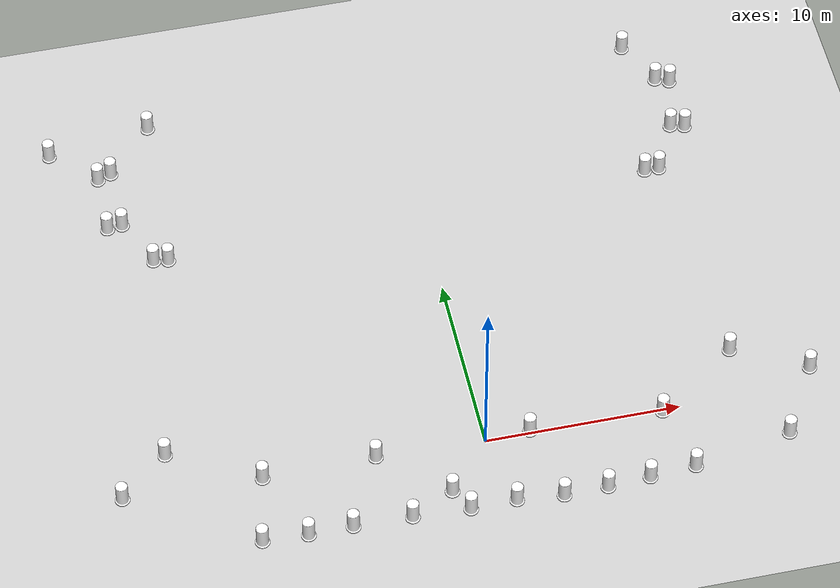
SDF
<sdf version="1.7">
 <world name="default">
  <light name="sun" type="directional">
   <pose>0 0 10 0 -0 0</pose>
   <diffuse>0.8 0.8 0.8 1</diffuse>
   <specular>0.2 0.2 0.2 1</specular>
   <attenuation>
    <range>1000</range>
    <constant>0.9</constant>
    <linear>0.01</linear>
    <quadratic>0.001</quadratic>
   </attenuation>
   <direction>-0.5 0.1 -0.9</direction>
   <spot><inner_angle>0</inner_angle><outer_angle>0</outer_angle><falloff>0</falloff></spot>
  </light>
  <model name="ground_plane">
   <static>1</static>
   <link name="link">
    <collision name="collision">
     <geometry><plane><normal>0 0 1</normal><size>100 100</size></plane></geometry>
     <surface><friction><ode><mu>100</mu><mu2>50</mu2></ode></friction></surface>
    </collision>
    <visual name="visual">
     <cast_shadows>0</cast_shadows>
     <geometry><plane><normal>0 0 1</normal><size>100 100</size></plane></geometry>
     <material>
      <script><uri>file://media/materials/scripts/gazebo.material</uri><name>Gazebo/Grey</name></script>
     </material>
    </visual>
   </link>
  </model>
  <gravity>0 0 -9.8</gravity>
  <magnetic_field>6e-06 2.3e-05 -4.2e-05</magnetic_field>
  <atmosphere type="adiabatic"/>
  <physics type="ode">
   <max_step_size>0.001</max_step_size>
   <real_time_factor>1</real_time_factor>
   <real_time_update_rate>1000</real_time_update_rate>
  </physics>
  <scene><ambient>0.4 0.4 0.4 1</ambient><background>0.7 0.7 0.7 1</background><shadows>1</shadows></scene>
  <spherical_coordinates>
   <surface_model>EARTH_WGS84</surface_model>
   <latitude_deg>0</latitude_deg>
   <longitude_deg>0</longitude_deg>
   <elevation>0</elevation>
   <heading_deg>0</heading_deg>
  </spherical_coordinates>
  <model name="Barrel_Cone">
   <static>1</static>
   <link name="link">
    <visual name="visual">
     <geometry><mesh><uri>model://barrel_cone/meshes/Barrel_Cone.STL</uri><scale>1 1 1</scale></mesh></geometry>
     <material>
      <ambient>1 1 1 1</ambient>
      <diffuse>1 1 1 1</diffuse>
      <specular>0.1 0.1 0.1 1</specular>
      <emissive>0 0 0 1</emissive>
     </material>
    </visual>
    <collision name="collision">
     <geometry><mesh><uri>model://barrel_cone/meshes/Barrel_Cone.STL</uri><scale>1 1 1</scale></mesh></geometry>
     <surface>
      <friction><ode><mu>0.5</mu><mu2>0.5</mu2></ode></friction>
      <bounce><restitution_coefficient>0.1</restitution_coefficient></bounce>
      <contact><ode><soft_cfm>0</soft_cfm><soft_erp>0.2</soft_erp></ode></contact>
     </surface>
    </collision>
    <inertial>
     <mass>1</mass>
     <inertia><ixx>0.1</ixx><iyy>0.1</iyy><izz>0.1</izz><ixy>0</ixy><ixz>0</ixz><iyz>0</iyz></inertia>
    </inertial>
   </link>
   <pose>13.8376 21.0682 0 0 -0 0</pose>
  </model>
  <model name="Barrel_Cone_0">
   <static>1</static>
   <link name="link">
    <visual name="visual">
     <geometry><mesh><uri>model://barrel_cone/meshes/Barrel_Cone.STL</uri><scale>1 1 1</scale></mesh></geometry>
     <material>
      <ambient>1 1 1 1</ambient>
      <diffuse>1 1 1 1</diffuse>
      <specular>0.1 0.1 0.1 1</specular>
      <emissive>0 0 0 1</emissive>
     </material>
    </visual>
    <collision name="collision">
     <geometry><mesh><uri>model://barrel_cone/meshes/Barrel_Cone.STL</uri><scale>1 1 1</scale></mesh></geometry>
     <surface>
      <friction><ode><mu>0.5</mu><mu2>0.5</mu2></ode></friction>
      <bounce><restitution_coefficient>0.1</restitution_coefficient></bounce>
      <contact><ode><soft_cfm>0</soft_cfm><soft_erp>0.2</soft_erp></ode></contact>
     </surface>
    </collision>
    <inertial>
     <mass>1</mass>
     <inertia><ixx>0.1</ixx><iyy>0.1</iyy><izz>0.1</izz><ixy>0</ixy><ixz>0</ixz><iyz>0</iyz></inertia>
    </inertial>
   </link>
   <pose>14.5472 17.5415 0 0 -0 0</pose>
  </model>
  <model name="Barrel_Cone_1">
   <static>1</static>
   <link name="link">
    <visual name="visual">
     <geometry><mesh><uri>model://barrel_cone/meshes/Barrel_Cone.STL</uri><scale>1 1 1</scale></mesh></geometry>
     <material>
      <ambient>1 1 1 1</ambient>
      <diffuse>1 1 1 1</diffuse>
      <specular>0.1 0.1 0.1 1</specular>
      <emissive>0 0 0 1</emissive>
     </material>
    </visual>
    <collision name="collision">
     <geometry><mesh><uri>model://barrel_cone/meshes/Barrel_Cone.STL</uri><scale>1 1 1</scale></mesh></geometry>
     <surface>
      <friction><ode><mu>0.5</mu><mu2>0.5</mu2></ode></friction>
      <bounce><restitution_coefficient>0.1</restitution_coefficient></bounce>
      <contact><ode><soft_cfm>0</soft_cfm><soft_erp>0.2</soft_erp></ode></contact>
     </surface>
    </collision>
    <inertial>
     <mass>1</mass>
     <inertia><ixx>0.1</ixx><iyy>0.1</iyy><izz>0.1</izz><ixy>0</ixy><ixz>0</ixz><iyz>0</iyz></inertia>
    </inertial>
   </link>
   <pose>13.8131 17.7297 0 0 -0 0</pose>
  </model>
  <model name="Barrel_Cone_2">
   <static>1</static>
   <link name="link">
    <visual name="visual">
     <geometry><mesh><uri>model://barrel_cone/meshes/Barrel_Cone.STL</uri><scale>1 1 1</scale></mesh></geometry>
     <material>
      <ambient>1 1 1 1</ambient>
      <diffuse>1 1 1 1</diffuse>
      <specular>0.1 0.1 0.1 1</specular>
      <emissive>0 0 0 1</emissive>
     </material>
    </visual>
    <collision name="collision">
     <geometry><mesh><uri>model://barrel_cone/meshes/Barrel_Cone.STL</uri><scale>1 1 1</scale></mesh></geometry>
     <surface>
      <friction><ode><mu>0.5</mu><mu2>0.5</mu2></ode></friction>
      <bounce><restitution_coefficient>0.1</restitution_coefficient></bounce>
      <contact><ode><soft_cfm>0</soft_cfm><soft_erp>0.2</soft_erp></ode></contact>
     </surface>
    </collision>
    <inertial>
     <mass>1</mass>
     <inertia><ixx>0.1</ixx><iyy>0.1</iyy><izz>0.1</izz><ixy>0</ixy><ixz>0</ixz><iyz>0</iyz></inertia>
    </inertial>
   </link>
   <pose>14.5565 20.7766 0 0 -0 0</pose>
  </model>
  <model name="Barrel_Cone_3">
   <static>1</static>
   <link name="link">
    <visual name="visual">
     <geometry><mesh><uri>model://barrel_cone/meshes/Barrel_Cone.STL</uri><scale>1 1 1</scale></mesh></geometry>
     <material>
      <ambient>1 1 1 1</ambient>
      <diffuse>1 1 1 1</diffuse>
      <specular>0.1 0.1 0.1 1</specular>
      <emissive>0 0 0 1</emissive>
     </material>
    </visual>
    <collision name="collision">
     <geometry><mesh><uri>model://barrel_cone/meshes/Barrel_Cone.STL</uri><scale>1 1 1</scale></mesh></geometry>
     <surface>
      <friction><ode><mu>0.5</mu><mu2>0.5</mu2></ode></friction>
      <bounce><restitution_coefficient>0.1</restitution_coefficient></bounce>
      <contact><ode><soft_cfm>0</soft_cfm><soft_erp>0.2</soft_erp></ode></contact>
     </surface>
    </collision>
    <inertial>
     <mass>1</mass>
     <inertia><ixx>0.1</ixx><iyy>0.1</iyy><izz>0.1</izz><ixy>0</ixy><ixz>0</ixz><iyz>0</iyz></inertia>
    </inertial>
   </link>
   <pose>11.718 15.0001 0 0 -0 0</pose>
  </model>
  <model name="Barrel_Cone_4">
   <static>1</static>
   <link name="link">
    <visual name="visual">
     <geometry><mesh><uri>model://barrel_cone/meshes/Barrel_Cone.STL</uri><scale>1 1 1</scale></mesh></geometry>
     <material>
      <ambient>1 1 1 1</ambient>
      <diffuse>1 1 1 1</diffuse>
      <specular>0.1 0.1 0.1 1</specular>
      <emissive>0 0 0 1</emissive>
     </material>
    </visual>
    <collision name="collision">
     <geometry><mesh><uri>model://barrel_cone/meshes/Barrel_Cone.STL</uri><scale>1 1 1</scale></mesh></geometry>
     <surface>
      <friction><ode><mu>0.5</mu><mu2>0.5</mu2></ode></friction>
      <bounce><restitution_coefficient>0.1</restitution_coefficient></bounce>
      <contact><ode><soft_cfm>0</soft_cfm><soft_erp>0.2</soft_erp></ode></contact>
     </surface>
    </collision>
    <inertial>
     <mass>1</mass>
     <inertia><ixx>0.1</ixx><iyy>0.1</iyy><izz>0.1</izz><ixy>0</ixy><ixz>0</ixz><iyz>0</iyz></inertia>
    </inertial>
   </link>
   <pose>12.4949 15.0017 0 0 -0 0</pose>
  </model>
  <model name="Barrel_Cone_5">
   <static>1</static>
   <link name="link">
    <visual name="visual">
     <geometry><mesh><uri>model://barrel_cone/meshes/Barrel_Cone.STL</uri><scale>1 1 1</scale></mesh></geometry>
     <material>
      <ambient>1 1 1 1</ambient>
      <diffuse>1 1 1 1</diffuse>
      <specular>0.1 0.1 0.1 1</specular>
      <emissive>0 0 0 1</emissive>
     </material>
    </visual>
    <collision name="collision">
     <geometry><mesh><uri>model://barrel_cone/meshes/Barrel_Cone.STL</uri><scale>1 1 1</scale></mesh></geometry>
     <surface>
      <friction><ode><mu>0.5</mu><mu2>0.5</mu2></ode></friction>
      <bounce><restitution_coefficient>0.1</restitution_coefficient></bounce>
      <contact><ode><soft_cfm>0</soft_cfm><soft_erp>0.2</soft_erp></ode></contact>
     </surface>
    </collision>
    <inertial>
     <mass>1</mass>
     <inertia><ixx>0.1</ixx><iyy>0.1</iyy><izz>0.1</izz><ixy>0</ixy><ixz>0</ixz><iyz>0</iyz></inertia>
    </inertial>
   </link>
   <pose>12.9676 2.5241 0 0 -0 0</pose>
  </model>
  <model name="Barrel_Cone_7">
   <static>1</static>
   <link name="link">
    <visual name="visual">
     <geometry><mesh><uri>model://barrel_cone/meshes/Barrel_Cone.STL</uri><scale>1 1 1</scale></mesh></geometry>
     <material>
      <ambient>1 1 1 1</ambient>
      <diffuse>1 1 1 1</diffuse>
      <specular>0.1 0.1 0.1 1</specular>
      <emissive>0 0 0 1</emissive>
     </material>
    </visual>
    <collision name="collision">
     <geometry><mesh><uri>model://barrel_cone/meshes/Barrel_Cone.STL</uri><scale>1 1 1</scale></mesh></geometry>
     <surface>
      <friction><ode><mu>0.5</mu><mu2>0.5</mu2></ode></friction>
      <bounce><restitution_coefficient>0.1</restitution_coefficient></bounce>
      <contact><ode><soft_cfm>0</soft_cfm><soft_erp>0.2</soft_erp></ode></contact>
     </surface>
    </collision>
    <inertial>
     <mass>1</mass>
     <inertia><ixx>0.1</ixx><iyy>0.1</iyy><izz>0.1</izz><ixy>0</ixy><ixz>0</ixz><iyz>0</iyz></inertia>
    </inertial>
   </link>
   <pose>16.6469 0.586299 0 0 -0 0</pose>
  </model>
  <model name="Barrel_Cone_8">
   <static>1</static>
   <link name="link">
    <visual name="visual">
     <geometry><mesh><uri>model://barrel_cone/meshes/Barrel_Cone.STL</uri><scale>1 1 1</scale></mesh></geometry>
     <material>
      <ambient>1 1 1 1</ambient>
      <diffuse>1 1 1 1</diffuse>
      <specular>0.1 0.1 0.1 1</specular>
      <emissive>0 0 0 1</emissive>
     </material>
    </visual>
    <collision name="collision">
     <geometry><mesh><uri>model://barrel_cone/meshes/Barrel_Cone.STL</uri><scale>1 1 1</scale></mesh></geometry>
     <surface>
      <friction><ode><mu>0.5</mu><mu2>0.5</mu2></ode></friction>
      <bounce><restitution_coefficient>0.1</restitution_coefficient></bounce>
      <contact><ode><soft_cfm>0</soft_cfm><soft_erp>0.2</soft_erp></ode></contact>
     </surface>
    </collision>
    <inertial>
     <mass>1</mass>
     <inertia><ixx>0.1</ixx><iyy>0.1</iyy><izz>0.1</izz><ixy>0</ixy><ixz>0</ixz><iyz>0</iyz></inertia>
    </inertial>
   </link>
   <pose>14.5628 -3.15812 0 0 -0 0</pose>
  </model>
  <model name="Barrel_Cone_9">
   <static>1</static>
   <link name="link">
    <visual name="visual">
     <geometry><mesh><uri>model://barrel_cone/meshes/Barrel_Cone.STL</uri><scale>1 1 1</scale></mesh></geometry>
     <material>
      <ambient>1 1 1 1</ambient>
      <diffuse>1 1 1 1</diffuse>
      <specular>0.1 0.1 0.1 1</specular>
      <emissive>0 0 0 1</emissive>
     </material>
    </visual>
    <collision name="collision">
     <geometry><mesh><uri>model://barrel_cone/meshes/Barrel_Cone.STL</uri><scale>1 1 1</scale></mesh></geometry>
     <surface>
      <friction><ode><mu>0.5</mu><mu2>0.5</mu2></ode></friction>
      <bounce><restitution_coefficient>0.1</restitution_coefficient></bounce>
      <contact><ode><soft_cfm>0</soft_cfm><soft_erp>0.2</soft_erp></ode></contact>
     </surface>
    </collision>
    <inertial>
     <mass>1</mass>
     <inertia><ixx>0.1</ixx><iyy>0.1</iyy><izz>0.1</izz><ixy>0</ixy><ixz>0</ixz><iyz>0</iyz></inertia>
    </inertial>
   </link>
   <pose>-5.94864 -0.220497 0 0 -0 0</pose>
  </model>
  <model name="Barrel_Cone_10">
   <static>1</static>
   <link name="link">
    <visual name="visual">
     <geometry><mesh><uri>model://barrel_cone/meshes/Barrel_Cone.STL</uri><scale>1 1 1</scale></mesh></geometry>
     <material>
      <ambient>1 1 1 1</ambient>
      <diffuse>1 1 1 1</diffuse>
      <specular>0.1 0.1 0.1 1</specular>
      <emissive>0 0 0 1</emissive>
     </material>
    </visual>
    <collision name="collision">
     <geometry><mesh><uri>model://barrel_cone/meshes/Barrel_Cone.STL</uri><scale>1 1 1</scale></mesh></geometry>
     <surface>
      <friction><ode><mu>0.5</mu><mu2>0.5</mu2></ode></friction>
      <bounce><restitution_coefficient>0.1</restitution_coefficient></bounce>
      <contact><ode><soft_cfm>0</soft_cfm><soft_erp>0.2</soft_erp></ode></contact>
     </surface>
    </collision>
    <inertial>
     <mass>1</mass>
     <inertia><ixx>0.1</ixx><iyy>0.1</iyy><izz>0.1</izz><ixy>0</ixy><ixz>0</ixz><iyz>0</iyz></inertia>
    </inertial>
   </link>
   <pose>-11.6993 -0.29833 0 0 -0 0</pose>
  </model>
  <model name="Barrel_Cone_11">
   <static>1</static>
   <link name="link">
    <visual name="visual">
     <geometry><mesh><uri>model://barrel_cone/meshes/Barrel_Cone.STL</uri><scale>1 1 1</scale></mesh></geometry>
     <material>
      <ambient>1 1 1 1</ambient>
      <diffuse>1 1 1 1</diffuse>
      <specular>0.1 0.1 0.1 1</specular>
      <emissive>0 0 0 1</emissive>
     </material>
    </visual>
    <collision name="collision">
     <geometry><mesh><uri>model://barrel_cone/meshes/Barrel_Cone.STL</uri><scale>1 1 1</scale></mesh></geometry>
     <surface>
      <friction><ode><mu>0.5</mu><mu2>0.5</mu2></ode></friction>
      <bounce><restitution_coefficient>0.1</restitution_coefficient></bounce>
      <contact><ode><soft_cfm>0</soft_cfm><soft_erp>0.2</soft_erp></ode></contact>
     </surface>
    </collision>
    <inertial>
     <mass>1</mass>
     <inertia><ixx>0.1</ixx><iyy>0.1</iyy><izz>0.1</izz><ixy>0</ixy><ixz>0</ixz><iyz>0</iyz></inertia>
    </inertial>
   </link>
   <pose>1.91109 -0.260444 0 0 -0 0</pose>
  </model>
  <model name="Barrel_Cone_12">
   <static>1</static>
   <link name="link">
    <visual name="visual">
     <geometry><mesh><uri>model://barrel_cone/meshes/Barrel_Cone.STL</uri><scale>1 1 1</scale></mesh></geometry>
     <material>
      <ambient>1 1 1 1</ambient>
      <diffuse>1 1 1 1</diffuse>
      <specular>0.1 0.1 0.1 1</specular>
      <emissive>0 0 0 1</emissive>
     </material>
    </visual>
    <collision name="collision">
     <geometry><mesh><uri>model://barrel_cone/meshes/Barrel_Cone.STL</uri><scale>1 1 1</scale></mesh></geometry>
     <surface>
      <friction><ode><mu>0.5</mu><mu2>0.5</mu2></ode></friction>
      <bounce><restitution_coefficient>0.1</restitution_coefficient></bounce>
      <contact><ode><soft_cfm>0</soft_cfm><soft_erp>0.2</soft_erp></ode></contact>
     </surface>
    </collision>
    <inertial>
     <mass>1</mass>
     <inertia><ixx>0.1</ixx><iyy>0.1</iyy><izz>0.1</izz><ixy>0</ixy><ixz>0</ixz><iyz>0</iyz></inertia>
    </inertial>
   </link>
   <pose>8.69496 -0.522741 0 0 -0 0</pose>
  </model>
  <model name="Barrel_Cone_13">
   <static>1</static>
   <link name="link">
    <visual name="visual">
     <geometry><mesh><uri>model://barrel_cone/meshes/Barrel_Cone.STL</uri><scale>1 1 1</scale></mesh></geometry>
     <material>
      <ambient>1 1 1 1</ambient>
      <diffuse>1 1 1 1</diffuse>
      <specular>0.1 0.1 0.1 1</specular>
      <emissive>0 0 0 1</emissive>
     </material>
    </visual>
    <collision name="collision">
     <geometry><mesh><uri>model://barrel_cone/meshes/Barrel_Cone.STL</uri><scale>1 1 1</scale></mesh></geometry>
     <surface>
      <friction><ode><mu>0.5</mu><mu2>0.5</mu2></ode></friction>
      <bounce><restitution_coefficient>0.1</restitution_coefficient></bounce>
      <contact><ode><soft_cfm>0</soft_cfm><soft_erp>0.2</soft_erp></ode></contact>
     </surface>
    </collision>
    <inertial>
     <mass>1</mass>
     <inertia><ixx>0.1</ixx><iyy>0.1</iyy><izz>0.1</izz><ixy>0</ixy><ixz>0</ixz><iyz>0</iyz></inertia>
    </inertial>
   </link>
   <pose>-2.68294 -3.07371 0 0 -0 0</pose>
  </model>
  <model name="Barrel_Cone_14">
   <static>1</static>
   <link name="link">
    <visual name="visual">
     <geometry><mesh><uri>model://barrel_cone/meshes/Barrel_Cone.STL</uri><scale>1 1 1</scale></mesh></geometry>
     <material>
      <ambient>1 1 1 1</ambient>
      <diffuse>1 1 1 1</diffuse>
      <specular>0.1 0.1 0.1 1</specular>
      <emissive>0 0 0 1</emissive>
     </material>
    </visual>
    <collision name="collision">
     <geometry><mesh><uri>model://barrel_cone/meshes/Barrel_Cone.STL</uri><scale>1 1 1</scale></mesh></geometry>
     <surface>
      <friction><ode><mu>0.5</mu><mu2>0.5</mu2></ode></friction>
      <bounce><restitution_coefficient>0.1</restitution_coefficient></bounce>
      <contact><ode><soft_cfm>0</soft_cfm><soft_erp>0.2</soft_erp></ode></contact>
     </surface>
    </collision>
    <inertial>
     <mass>1</mass>
     <inertia><ixx>0.1</ixx><iyy>0.1</iyy><izz>0.1</izz><ixy>0</ixy><ixz>0</ixz><iyz>0</iyz></inertia>
    </inertial>
   </link>
   <pose>-12.4256 -4.03478 0 0 -0 0</pose>
  </model>
  <model name="Barrel_Cone_15">
   <static>1</static>
   <link name="link">
    <visual name="visual">
     <geometry><mesh><uri>model://barrel_cone/meshes/Barrel_Cone.STL</uri><scale>1 1 1</scale></mesh></geometry>
     <material>
      <ambient>1 1 1 1</ambient>
      <diffuse>1 1 1 1</diffuse>
      <specular>0.1 0.1 0.1 1</specular>
      <emissive>0 0 0 1</emissive>
     </material>
    </visual>
    <collision name="collision">
     <geometry><mesh><uri>model://barrel_cone/meshes/Barrel_Cone.STL</uri><scale>1 1 1</scale></mesh></geometry>
     <surface>
      <friction><ode><mu>0.5</mu><mu2>0.5</mu2></ode></friction>
      <bounce><restitution_coefficient>0.1</restitution_coefficient></bounce>
      <contact><ode><soft_cfm>0</soft_cfm><soft_erp>0.2</soft_erp></ode></contact>
     </surface>
    </collision>
    <inertial>
     <mass>1</mass>
     <inertia><ixx>0.1</ixx><iyy>0.1</iyy><izz>0.1</izz><ixy>0</ixy><ixz>0</ixz><iyz>0</iyz></inertia>
    </inertial>
   </link>
   <pose>-10.1371 -4.13755 0 0 -0 0</pose>
  </model>
  <model name="Barrel_Cone_16">
   <static>1</static>
   <link name="link">
    <visual name="visual">
     <geometry><mesh><uri>model://barrel_cone/meshes/Barrel_Cone.STL</uri><scale>1 1 1</scale></mesh></geometry>
     <material>
      <ambient>1 1 1 1</ambient>
      <diffuse>1 1 1 1</diffuse>
      <specular>0.1 0.1 0.1 1</specular>
      <emissive>0 0 0 1</emissive>
     </material>
    </visual>
    <collision name="collision">
     <geometry><mesh><uri>model://barrel_cone/meshes/Barrel_Cone.STL</uri><scale>1 1 1</scale></mesh></geometry>
     <surface>
      <friction><ode><mu>0.5</mu><mu2>0.5</mu2></ode></friction>
      <bounce><restitution_coefficient>0.1</restitution_coefficient></bounce>
      <contact><ode><soft_cfm>0</soft_cfm><soft_erp>0.2</soft_erp></ode></contact>
     </surface>
    </collision>
    <inertial>
     <mass>1</mass>
     <inertia><ixx>0.1</ixx><iyy>0.1</iyy><izz>0.1</izz><ixy>0</ixy><ixz>0</ixz><iyz>0</iyz></inertia>
    </inertial>
   </link>
   <pose>-7.89612 -4.11008 0 0 -0 0</pose>
  </model>
  <model name="Barrel_Cone_17">
   <static>1</static>
   <link name="link">
    <visual name="visual">
     <geometry><mesh><uri>model://barrel_cone/meshes/Barrel_Cone.STL</uri><scale>1 1 1</scale></mesh></geometry>
     <material>
      <ambient>1 1 1 1</ambient>
      <diffuse>1 1 1 1</diffuse>
      <specular>0.1 0.1 0.1 1</specular>
      <emissive>0 0 0 1</emissive>
     </material>
    </visual>
    <collision name="collision">
     <geometry><mesh><uri>model://barrel_cone/meshes/Barrel_Cone.STL</uri><scale>1 1 1</scale></mesh></geometry>
     <surface>
      <friction><ode><mu>0.5</mu><mu2>0.5</mu2></ode></friction>
      <bounce><restitution_coefficient>0.1</restitution_coefficient></bounce>
      <contact><ode><soft_cfm>0</soft_cfm><soft_erp>0.2</soft_erp></ode></contact>
     </surface>
    </collision>
    <inertial>
     <mass>1</mass>
     <inertia><ixx>0.1</ixx><iyy>0.1</iyy><izz>0.1</izz><ixy>0</ixy><ixz>0</ixz><iyz>0</iyz></inertia>
    </inertial>
   </link>
   <pose>-4.9258 -4.17526 0 0 -0 0</pose>
  </model>
  <model name="Barrel_Cone_18">
   <static>1</static>
   <link name="link">
    <visual name="visual">
     <geometry><mesh><uri>model://barrel_cone/meshes/Barrel_Cone.STL</uri><scale>1 1 1</scale></mesh></geometry>
     <material>
      <ambient>1 1 1 1</ambient>
      <diffuse>1 1 1 1</diffuse>
      <specular>0.1 0.1 0.1 1</specular>
      <emissive>0 0 0 1</emissive>
     </material>
    </visual>
    <collision name="collision">
     <geometry><mesh><uri>model://barrel_cone/meshes/Barrel_Cone.STL</uri><scale>1 1 1</scale></mesh></geometry>
     <surface>
      <friction><ode><mu>0.5</mu><mu2>0.5</mu2></ode></friction>
      <bounce><restitution_coefficient>0.1</restitution_coefficient></bounce>
      <contact><ode><soft_cfm>0</soft_cfm><soft_erp>0.2</soft_erp></ode></contact>
     </surface>
    </collision>
    <inertial>
     <mass>1</mass>
     <inertia><ixx>0.1</ixx><iyy>0.1</iyy><izz>0.1</izz><ixy>0</ixy><ixz>0</ixz><iyz>0</iyz></inertia>
    </inertial>
   </link>
   <pose>-2.02108 -4.31723 0 0 -0 0</pose>
  </model>
  <model name="Barrel_Cone_19">
   <static>1</static>
   <link name="link">
    <visual name="visual">
     <geometry><mesh><uri>model://barrel_cone/meshes/Barrel_Cone.STL</uri><scale>1 1 1</scale></mesh></geometry>
     <material>
      <ambient>1 1 1 1</ambient>
      <diffuse>1 1 1 1</diffuse>
      <specular>0.1 0.1 0.1 1</specular>
      <emissive>0 0 0 1</emissive>
     </material>
    </visual>
    <collision name="collision">
     <geometry><mesh><uri>model://barrel_cone/meshes/Barrel_Cone.STL</uri><scale>1 1 1</scale></mesh></geometry>
     <surface>
      <friction><ode><mu>0.5</mu><mu2>0.5</mu2></ode></friction>
      <bounce><restitution_coefficient>0.1</restitution_coefficient></bounce>
      <contact><ode><soft_cfm>0</soft_cfm><soft_erp>0.2</soft_erp></ode></contact>
     </surface>
    </collision>
    <inertial>
     <mass>1</mass>
     <inertia><ixx>0.1</ixx><iyy>0.1</iyy><izz>0.1</izz><ixy>0</ixy><ixz>0</ixz><iyz>0</iyz></inertia>
    </inertial>
   </link>
   <pose>0.314921 -4.27109 0 0 -0 0</pose>
  </model>
  <model name="Barrel_Cone_20">
   <static>1</static>
   <link name="link">
    <visual name="visual">
     <geometry><mesh><uri>model://barrel_cone/meshes/Barrel_Cone.STL</uri><scale>1 1 1</scale></mesh></geometry>
     <material>
      <ambient>1 1 1 1</ambient>
      <diffuse>1 1 1 1</diffuse>
      <specular>0.1 0.1 0.1 1</specular>
      <emissive>0 0 0 1</emissive>
     </material>
    </visual>
    <collision name="collision">
     <geometry><mesh><uri>model://barrel_cone/meshes/Barrel_Cone.STL</uri><scale>1 1 1</scale></mesh></geometry>
     <surface>
      <friction><ode><mu>0.5</mu><mu2>0.5</mu2></ode></friction>
      <bounce><restitution_coefficient>0.1</restitution_coefficient></bounce>
      <contact><ode><soft_cfm>0</soft_cfm><soft_erp>0.2</soft_erp></ode></contact>
     </surface>
    </collision>
    <inertial>
     <mass>1</mass>
     <inertia><ixx>0.1</ixx><iyy>0.1</iyy><izz>0.1</izz><ixy>0</ixy><ixz>0</ixz><iyz>0</iyz></inertia>
    </inertial>
   </link>
   <pose>2.66427 -4.49358 0 0 -0 0</pose>
  </model>
  <model name="Barrel_Cone_21">
   <static>1</static>
   <link name="link">
    <visual name="visual">
     <geometry><mesh><uri>model://barrel_cone/meshes/Barrel_Cone.STL</uri><scale>1 1 1</scale></mesh></geometry>
     <material>
      <ambient>1 1 1 1</ambient>
      <diffuse>1 1 1 1</diffuse>
      <specular>0.1 0.1 0.1 1</specular>
      <emissive>0 0 0 1</emissive>
     </material>
    </visual>
    <collision name="collision">
     <geometry><mesh><uri>model://barrel_cone/meshes/Barrel_Cone.STL</uri><scale>1 1 1</scale></mesh></geometry>
     <surface>
      <friction><ode><mu>0.5</mu><mu2>0.5</mu2></ode></friction>
      <bounce><restitution_coefficient>0.1</restitution_coefficient></bounce>
      <contact><ode><soft_cfm>0</soft_cfm><soft_erp>0.2</soft_erp></ode></contact>
     </surface>
    </collision>
    <inertial>
     <mass>1</mass>
     <inertia><ixx>0.1</ixx><iyy>0.1</iyy><izz>0.1</izz><ixy>0</ixy><ixz>0</ixz><iyz>0</iyz></inertia>
    </inertial>
   </link>
   <pose>4.90029 -4.45814 0 0 -0 0</pose>
  </model>
  <model name="Barrel_Cone_22">
   <static>1</static>
   <link name="link">
    <visual name="visual">
     <geometry><mesh><uri>model://barrel_cone/meshes/Barrel_Cone.STL</uri><scale>1 1 1</scale></mesh></geometry>
     <material>
      <ambient>1 1 1 1</ambient>
      <diffuse>1 1 1 1</diffuse>
      <specular>0.1 0.1 0.1 1</specular>
      <emissive>0 0 0 1</emissive>
     </material>
    </visual>
    <collision name="collision">
     <geometry><mesh><uri>model://barrel_cone/meshes/Barrel_Cone.STL</uri><scale>1 1 1</scale></mesh></geometry>
     <surface>
      <friction><ode><mu>0.5</mu><mu2>0.5</mu2></ode></friction>
      <bounce><restitution_coefficient>0.1</restitution_coefficient></bounce>
      <contact><ode><soft_cfm>0</soft_cfm><soft_erp>0.2</soft_erp></ode></contact>
     </surface>
    </collision>
    <inertial>
     <mass>1</mass>
     <inertia><ixx>0.1</ixx><iyy>0.1</iyy><izz>0.1</izz><ixy>0</ixy><ixz>0</ixz><iyz>0</iyz></inertia>
    </inertial>
   </link>
   <pose>7.08855 -4.33207 0 0 -0 0</pose>
  </model>
  <model name="Barrel_Cone_23">
   <static>1</static>
   <link name="link">
    <visual name="visual">
     <geometry><mesh><uri>model://barrel_cone/meshes/Barrel_Cone.STL</uri><scale>1 1 1</scale></mesh></geometry>
     <material>
      <ambient>1 1 1 1</ambient>
      <diffuse>1 1 1 1</diffuse>
      <specular>0.1 0.1 0.1 1</specular>
      <emissive>0 0 0 1</emissive>
     </material>
    </visual>
    <collision name="collision">
     <geometry><mesh><uri>model://barrel_cone/meshes/Barrel_Cone.STL</uri><scale>1 1 1</scale></mesh></geometry>
     <surface>
      <friction><ode><mu>0.5</mu><mu2>0.5</mu2></ode></friction>
      <bounce><restitution_coefficient>0.1</restitution_coefficient></bounce>
      <contact><ode><soft_cfm>0</soft_cfm><soft_erp>0.2</soft_erp></ode></contact>
     </surface>
    </collision>
    <inertial>
     <mass>1</mass>
     <inertia><ixx>0.1</ixx><iyy>0.1</iyy><izz>0.1</izz><ixy>0</ixy><ixz>0</ixz><iyz>0</iyz></inertia>
    </inertial>
   </link>
   <pose>9.4598 -4.15588 0 0 -0 0</pose>
  </model>
  <model name="Barrel_Cone_24">
   <static>1</static>
   <link name="link">
    <visual name="visual">
     <geometry><mesh><uri>model://barrel_cone/meshes/Barrel_Cone.STL</uri><scale>1 1 1</scale></mesh></geometry>
     <material>
      <ambient>1 1 1 1</ambient>
      <diffuse>1 1 1 1</diffuse>
      <specular>0.1 0.1 0.1 1</specular>
      <emissive>0 0 0 1</emissive>
     </material>
    </visual>
    <collision name="collision">
     <geometry><mesh><uri>model://barrel_cone/meshes/Barrel_Cone.STL</uri><scale>1 1 1</scale></mesh></geometry>
     <surface>
      <friction><ode><mu>0.5</mu><mu2>0.5</mu2></ode></friction>
      <bounce><restitution_coefficient>0.1</restitution_coefficient></bounce>
      <contact><ode><soft_cfm>0</soft_cfm><soft_erp>0.2</soft_erp></ode></contact>
     </surface>
    </collision>
    <inertial>
     <mass>1</mass>
     <inertia><ixx>0.1</ixx><iyy>0.1</iyy><izz>0.1</izz><ixy>0</ixy><ixz>0</ixz><iyz>0</iyz></inertia>
    </inertial>
   </link>
   <pose>-15.7241 20.7654 0 0 -0 0</pose>
  </model>
  <model name="Barrel_Cone_25">
   <static>1</static>
   <link name="link">
    <visual name="visual">
     <geometry><mesh><uri>model://barrel_cone/meshes/Barrel_Cone.STL</uri><scale>1 1 1</scale></mesh></geometry>
     <material>
      <ambient>1 1 1 1</ambient>
      <diffuse>1 1 1 1</diffuse>
      <specular>0.1 0.1 0.1 1</specular>
      <emissive>0 0 0 1</emissive>
     </material>
    </visual>
    <collision name="collision">
     <geometry><mesh><uri>model://barrel_cone/meshes/Barrel_Cone.STL</uri><scale>1 1 1</scale></mesh></geometry>
     <surface>
      <friction><ode><mu>0.5</mu><mu2>0.5</mu2></ode></friction>
      <bounce><restitution_coefficient>0.1</restitution_coefficient></bounce>
      <contact><ode><soft_cfm>0</soft_cfm><soft_erp>0.2</soft_erp></ode></contact>
     </surface>
    </collision>
    <inertial>
     <mass>1</mass>
     <inertia><ixx>0.1</ixx><iyy>0.1</iyy><izz>0.1</izz><ixy>0</ixy><ixz>0</ixz><iyz>0</iyz></inertia>
    </inertial>
   </link>
   <pose>-16.4475 20.5009 0 0 -0 0</pose>
  </model>
  <model name="Barrel_Cone_26">
   <static>1</static>
   <link name="link">
    <visual name="visual">
     <geometry><mesh><uri>model://barrel_cone/meshes/Barrel_Cone.STL</uri><scale>1 1 1</scale></mesh></geometry>
     <material>
      <ambient>1 1 1 1</ambient>
      <diffuse>1 1 1 1</diffuse>
      <specular>0.1 0.1 0.1 1</specular>
      <emissive>0 0 0 1</emissive>
     </material>
    </visual>
    <collision name="collision">
     <geometry><mesh><uri>model://barrel_cone/meshes/Barrel_Cone.STL</uri><scale>1 1 1</scale></mesh></geometry>
     <surface>
      <friction><ode><mu>0.5</mu><mu2>0.5</mu2></ode></friction>
      <bounce><restitution_coefficient>0.1</restitution_coefficient></bounce>
      <contact><ode><soft_cfm>0</soft_cfm><soft_erp>0.2</soft_erp></ode></contact>
     </surface>
    </collision>
    <inertial>
     <mass>1</mass>
     <inertia><ixx>0.1</ixx><iyy>0.1</iyy><izz>0.1</izz><ixy>0</ixy><ixz>0</ixz><iyz>0</iyz></inertia>
    </inertial>
   </link>
   <pose>-16.5236 17.1174 0 0 -0 0</pose>
  </model>
  <model name="Barrel_Cone_27">
   <static>1</static>
   <link name="link">
    <visual name="visual">
     <geometry><mesh><uri>model://barrel_cone/meshes/Barrel_Cone.STL</uri><scale>1 1 1</scale></mesh></geometry>
     <material>
      <ambient>1 1 1 1</ambient>
      <diffuse>1 1 1 1</diffuse>
      <specular>0.1 0.1 0.1 1</specular>
      <emissive>0 0 0 1</emissive>
     </material>
    </visual>
    <collision name="collision">
     <geometry><mesh><uri>model://barrel_cone/meshes/Barrel_Cone.STL</uri><scale>1 1 1</scale></mesh></geometry>
     <surface>
      <friction><ode><mu>0.5</mu><mu2>0.5</mu2></ode></friction>
      <bounce><restitution_coefficient>0.1</restitution_coefficient></bounce>
      <contact><ode><soft_cfm>0</soft_cfm><soft_erp>0.2</soft_erp></ode></contact>
     </surface>
    </collision>
    <inertial>
     <mass>1</mass>
     <inertia><ixx>0.1</ixx><iyy>0.1</iyy><izz>0.1</izz><ixy>0</ixy><ixz>0</ixz><iyz>0</iyz></inertia>
    </inertial>
   </link>
   <pose>-15.7351 17.204 0 0 -0 0</pose>
  </model>
  <model name="Barrel_Cone_28">
   <static>1</static>
   <link name="link">
    <visual name="visual">
     <geometry><mesh><uri>model://barrel_cone/meshes/Barrel_Cone.STL</uri><scale>1 1 1</scale></mesh></geometry>
     <material>
      <ambient>1 1 1 1</ambient>
      <diffuse>1 1 1 1</diffuse>
      <specular>0.1 0.1 0.1 1</specular>
      <emissive>0 0 0 1</emissive>
     </material>
    </visual>
    <collision name="collision">
     <geometry><mesh><uri>model://barrel_cone/meshes/Barrel_Cone.STL</uri><scale>1 1 1</scale></mesh></geometry>
     <surface>
      <friction><ode><mu>0.5</mu><mu2>0.5</mu2></ode></friction>
      <bounce><restitution_coefficient>0.1</restitution_coefficient></bounce>
      <contact><ode><soft_cfm>0</soft_cfm><soft_erp>0.2</soft_erp></ode></contact>
     </surface>
    </collision>
    <inertial>
     <mass>1</mass>
     <inertia><ixx>0.1</ixx><iyy>0.1</iyy><izz>0.1</izz><ixy>0</ixy><ixz>0</ixz><iyz>0</iyz></inertia>
    </inertial>
   </link>
   <pose>-13.799 14.3811 0 0 -0 0</pose>
  </model>
  <model name="Barrel_Cone_29">
   <static>1</static>
   <link name="link">
    <visual name="visual">
     <geometry><mesh><uri>model://barrel_cone/meshes/Barrel_Cone.STL</uri><scale>1 1 1</scale></mesh></geometry>
     <material>
      <ambient>1 1 1 1</ambient>
      <diffuse>1 1 1 1</diffuse>
      <specular>0.1 0.1 0.1 1</specular>
      <emissive>0 0 0 1</emissive>
     </material>
    </visual>
    <collision name="collision">
     <geometry><mesh><uri>model://barrel_cone/meshes/Barrel_Cone.STL</uri><scale>1 1 1</scale></mesh></geometry>
     <surface>
      <friction><ode><mu>0.5</mu><mu2>0.5</mu2></ode></friction>
      <bounce><restitution_coefficient>0.1</restitution_coefficient></bounce>
      <contact><ode><soft_cfm>0</soft_cfm><soft_erp>0.2</soft_erp></ode></contact>
     </surface>
    </collision>
    <inertial>
     <mass>1</mass>
     <inertia><ixx>0.1</ixx><iyy>0.1</iyy><izz>0.1</izz><ixy>0</ixy><ixz>0</ixz><iyz>0</iyz></inertia>
    </inertial>
   </link>
   <pose>-14.5538 14.5002 0 0 -0 0</pose>
  </model>
  <model name="Barrel_Cone_30">
   <static>1</static>
   <link name="link">
    <visual name="visual">
     <geometry><mesh><uri>model://barrel_cone/meshes/Barrel_Cone.STL</uri><scale>1 1 1</scale></mesh></geometry>
     <material>
      <ambient>1 1 1 1</ambient>
      <diffuse>1 1 1 1</diffuse>
      <specular>0.1 0.1 0.1 1</specular>
      <emissive>0 0 0 1</emissive>
     </material>
    </visual>
    <collision name="collision">
     <geometry><mesh><uri>model://barrel_cone/meshes/Barrel_Cone.STL</uri><scale>1 1 1</scale></mesh></geometry>
     <surface>
      <friction><ode><mu>0.5</mu><mu2>0.5</mu2></ode></friction>
      <bounce><restitution_coefficient>0.1</restitution_coefficient></bounce>
      <contact><ode><soft_cfm>0</soft_cfm><soft_erp>0.2</soft_erp></ode></contact>
     </surface>
    </collision>
    <inertial>
     <mass>1</mass>
     <inertia><ixx>0.1</ixx><iyy>0.1</iyy><izz>0.1</izz><ixy>0</ixy><ixz>0</ixz><iyz>0</iyz></inertia>
    </inertial>
   </link>
   <pose>-16.17 2.13607 0 0 -0 0</pose>
  </model>
  <model name="Barrel_Cone_31">
   <static>1</static>
   <link name="link">
    <visual name="visual">
     <geometry><mesh><uri>model://barrel_cone/meshes/Barrel_Cone.STL</uri><scale>1 1 1</scale></mesh></geometry>
     <material>
      <ambient>1 1 1 1</ambient>
      <diffuse>1 1 1 1</diffuse>
      <specular>0.1 0.1 0.1 1</specular>
      <emissive>0 0 0 1</emissive>
     </material>
    </visual>
    <collision name="collision">
     <geometry><mesh><uri>model://barrel_cone/meshes/Barrel_Cone.STL</uri><scale>1 1 1</scale></mesh></geometry>
     <surface>
      <friction><ode><mu>0.5</mu><mu2>0.5</mu2></ode></friction>
      <bounce><restitution_coefficient>0.1</restitution_coefficient></bounce>
      <contact><ode><soft_cfm>0</soft_cfm><soft_erp>0.2</soft_erp></ode></contact>
     </surface>
    </collision>
    <inertial>
     <mass>1</mass>
     <inertia><ixx>0.1</ixx><iyy>0.1</iyy><izz>0.1</izz><ixy>0</ixy><ixz>0</ixz><iyz>0</iyz></inertia>
    </inertial>
   </link>
   <pose>-18.6923 -0.076974 0 0 -0 0</pose>
  </model>
  <model name="Barrel_Cone_32">
   <static>1</static>
   <link name="link">
    <visual name="visual">
     <geometry><mesh><uri>model://barrel_cone/meshes/Barrel_Cone.STL</uri><scale>1 1 1</scale></mesh></geometry>
     <material>
      <ambient>1 1 1 1</ambient>
      <diffuse>1 1 1 1</diffuse>
      <specular>0.1 0.1 0.1 1</specular>
      <emissive>0 0 0 1</emissive>
     </material>
    </visual>
    <collision name="collision">
     <geometry><mesh><uri>model://barrel_cone/meshes/Barrel_Cone.STL</uri><scale>1 1 1</scale></mesh></geometry>
     <surface>
      <friction><ode><mu>0.5</mu><mu2>0.5</mu2></ode></friction>
      <bounce><restitution_coefficient>0.1</restitution_coefficient></bounce>
      <contact><ode><soft_cfm>0</soft_cfm><soft_erp>0.2</soft_erp></ode></contact>
     </surface>
    </collision>
    <inertial>
     <mass>1</mass>
     <inertia><ixx>0.1</ixx><iyy>0.1</iyy><izz>0.1</izz><ixy>0</ixy><ixz>0</ixz><iyz>0</iyz></inertia>
    </inertial>
   </link>
   <pose>-18.6964 22.6567 0 0 -0 0</pose>
  </model>
  <model name="Barrel_Cone_33">
   <static>1</static>
   <link name="link">
    <visual name="visual">
     <geometry><mesh><uri>model://barrel_cone/meshes/Barrel_Cone.STL</uri><scale>1 1 1</scale></mesh></geometry>
     <material>
      <ambient>1 1 1 1</ambient>
      <diffuse>1 1 1 1</diffuse>
      <specular>0.1 0.1 0.1 1</specular>
      <emissive>0 0 0 1</emissive>
     </material>
    </visual>
    <collision name="collision">
     <geometry><mesh><uri>model://barrel_cone/meshes/Barrel_Cone.STL</uri><scale>1 1 1</scale></mesh></geometry>
     <surface>
      <friction><ode><mu>0.5</mu><mu2>0.5</mu2></ode></friction>
      <bounce><restitution_coefficient>0.1</restitution_coefficient></bounce>
      <contact><ode><soft_cfm>0</soft_cfm><soft_erp>0.2</soft_erp></ode></contact>
     </surface>
    </collision>
    <inertial>
     <mass>1</mass>
     <inertia><ixx>0.1</ixx><iyy>0.1</iyy><izz>0.1</izz><ixy>0</ixy><ixz>0</ixz><iyz>0</iyz></inertia>
    </inertial>
   </link>
   <pose>-13.2923 23.4773 0 0 -0 0</pose>
  </model>
  <model name="Barrel_Cone_34">
   <static>1</static>
   <link name="link">
    <visual name="visual">
     <geometry><mesh><uri>model://barrel_cone/meshes/Barrel_Cone.STL</uri><scale>1 1 1</scale></mesh></geometry>
     <material>
      <ambient>1 1 1 1</ambient>
      <diffuse>1 1 1 1</diffuse>
      <specular>0.1 0.1 0.1 1</specular>
      <emissive>0 0 0 1</emissive>
     </material>
    </visual>
    <collision name="collision">
     <geometry><mesh><uri>model://barrel_cone/meshes/Barrel_Cone.STL</uri><scale>1 1 1</scale></mesh></geometry>
     <surface>
      <friction><ode><mu>0.5</mu><mu2>0.5</mu2></ode></friction>
      <bounce><restitution_coefficient>0.1</restitution_coefficient></bounce>
      <contact><ode><soft_cfm>0</soft_cfm><soft_erp>0.2</soft_erp></ode></contact>
     </surface>
    </collision>
    <inertial>
     <mass>1</mass>
     <inertia><ixx>0.1</ixx><iyy>0.1</iyy><izz>0.1</izz><ixy>0</ixy><ixz>0</ixz><iyz>0</iyz></inertia>
    </inertial>
   </link>
   <pose>12.6495 23.6408 0 0 -0 0</pose>
  </model>
 </world>
</sdf>
